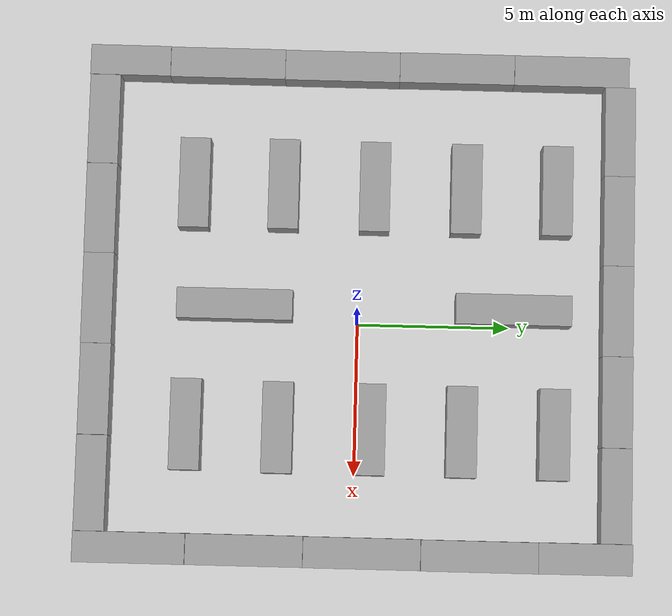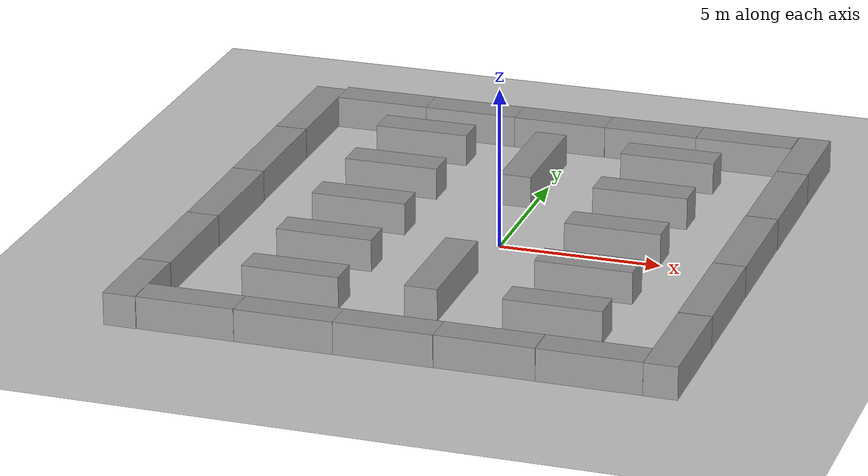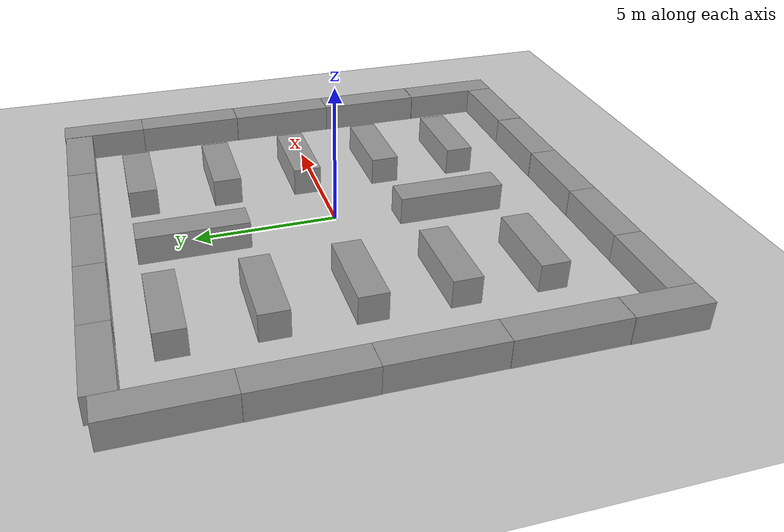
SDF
<sdf version="1.7">
 <world name="default">
  <model name="ground_plane">
   <static>1</static>
   <link name="link">
    <collision name="collision">
     <geometry><plane><normal>0 0 1</normal><size>100 100</size></plane></geometry>
     <surface><friction><ode><mu>100</mu><mu2>50</mu2></ode></friction></surface>
    </collision>
    <visual name="visual">
     <cast_shadows>0</cast_shadows>
     <geometry><plane><normal>0 0 1</normal><size>100 100</size></plane></geometry>
     <material>
      <script><uri>file://media/materials/scripts/gazebo.material</uri><name>Gazebo/Grey</name></script>
     </material>
    </visual>
   </link>
  </model>
  <light name="sun" type="directional">
   <pose>0 0 10 0 -0 0</pose>
   <diffuse>0.8 0.8 0.8 1</diffuse>
   <specular>0.2 0.2 0.2 1</specular>
   <attenuation>
    <range>1000</range>
    <constant>0.9</constant>
    <linear>0.01</linear>
    <quadratic>0.001</quadratic>
   </attenuation>
   <direction>-0.5 0.1 -0.9</direction>
   <spot><inner_angle>0</inner_angle><outer_angle>0</outer_angle><falloff>0</falloff></spot>
  </light>
  <scene><shadows>0</shadows><ambient>0.4 0.4 0.4 1</ambient><background>0.7 0.7 0.7 1</background></scene>
  <physics type="ode">
   <real_time_update_rate>1000</real_time_update_rate>
   <max_step_size>0.001</max_step_size>
   <real_time_factor>1</real_time_factor>
   <ode>
    <solver>
     <type>quick</type>
     <iters>150</iters>
     <precon_iters>0</precon_iters>
     <sor>1.4</sor>
     <use_dynamic_moi_rescaling>1</use_dynamic_moi_rescaling>
    </solver>
    <constraints>
     <cfm>1e-05</cfm>
     <erp>0.2</erp>
     <contact_max_correcting_vel>2000</contact_max_correcting_vel>
     <contact_surface_layer>0.01</contact_surface_layer>
    </constraints>
   </ode>
  </physics>
  <model name="my_world">
   <static>1</static>
   <frame name="my_world::__model__" attached_to="my_world::">
    <pose relative_to="__model__">0 0 0 0 -0 0</pose>
   </frame>
  </model>
  <gravity>0 0 -9.8</gravity>
  <magnetic_field>6e-06 2.3e-05 -4.2e-05</magnetic_field>
  <atmosphere type="adiabatic"/>
  <spherical_coordinates>
   <surface_model>EARTH_WGS84</surface_model>
   <latitude_deg>0</latitude_deg>
   <longitude_deg>0</longitude_deg>
   <elevation>0</elevation>
   <heading_deg>0</heading_deg>
  </spherical_coordinates>
  <model name="unit_box_1">
   <pose>-6.51048 8.5192 0.499832 0 -0.000113 3e-05</pose>
   <link name="link">
    <inertial>
     <mass>1</mass>
     <inertia>
      <ixx>0.166667</ixx>
      <ixy>0</ixy>
      <ixz>0</ixz>
      <iyy>0.166667</iyy>
      <iyz>0</iyz>
      <izz>0.166667</izz>
     </inertia>
    </inertial>
    <collision name="collision"><geometry><box><size>2.97427 1 1</size></box></geometry></collision>
    <visual name="visual">
     <geometry><box><size>2.97427 1 1</size></box></geometry>
     <material>
      <script><name>Gazebo/Grey</name><uri>file://media/materials/scripts/gazebo.material</uri></script>
     </material>
    </visual>
   </link>
  </model>
  <model name="unit_box_1_clone">
   <pose>-3.53605 8.51514 0.499832 0 -0.000113 4.9e-05</pose>
   <link name="link">
    <inertial>
     <mass>1</mass>
     <inertia>
      <ixx>0.166667</ixx>
      <ixy>0</ixy>
      <ixz>0</ixz>
      <iyy>0.166667</iyy>
      <iyz>0</iyz>
      <izz>0.166667</izz>
     </inertia>
    </inertial>
    <collision name="collision"><geometry><box><size>2.97427 1 1</size></box></geometry></collision>
    <visual name="visual">
     <geometry><box><size>2.97427 1 1</size></box></geometry>
     <material>
      <script><name>Gazebo/Grey</name><uri>file://media/materials/scripts/gazebo.material</uri></script>
     </material>
    </visual>
   </link>
  </model>
  <model name="unit_box_1_clone_0">
   <pose>-0.561181 8.51089 0.499832 0 0.000113 7.2e-05</pose>
   <link name="link">
    <inertial>
     <mass>1</mass>
     <inertia>
      <ixx>0.166667</ixx>
      <ixy>0</ixy>
      <ixz>0</ixz>
      <iyy>0.166667</iyy>
      <iyz>0</iyz>
      <izz>0.166667</izz>
     </inertia>
    </inertial>
    <collision name="collision"><geometry><box><size>2.97427 1 1</size></box></geometry></collision>
    <visual name="visual">
     <geometry><box><size>2.97427 1 1</size></box></geometry>
     <material>
      <script><name>Gazebo/Grey</name><uri>file://media/materials/scripts/gazebo.material</uri></script>
     </material>
    </visual>
   </link>
  </model>
  <model name="unit_box_1_clone_1">
   <pose>2.415 8.51847 0.499832 -0 -0.000113 0.00018</pose>
   <link name="link">
    <inertial>
     <mass>1</mass>
     <inertia>
      <ixx>0.166667</ixx>
      <ixy>0</ixy>
      <ixz>0</ixz>
      <iyy>0.166667</iyy>
      <iyz>0</iyz>
      <izz>0.166667</izz>
     </inertia>
    </inertial>
    <collision name="collision"><geometry><box><size>2.97427 1 1</size></box></geometry></collision>
    <visual name="visual">
     <geometry><box><size>2.97427 1 1</size></box></geometry>
     <material>
      <script><name>Gazebo/Grey</name><uri>file://media/materials/scripts/gazebo.material</uri></script>
     </material>
    </visual>
   </link>
  </model>
  <model name="unit_box_1_clone_2">
   <pose>5.44261 8.52219 0.499801 -0 -0.000129 0.000342</pose>
   <link name="link">
    <inertial>
     <mass>1</mass>
     <inertia>
      <ixx>0.166667</ixx>
      <ixy>0</ixy>
      <ixz>0</ixz>
      <iyy>0.166667</iyy>
      <iyz>0</iyz>
      <izz>0.166667</izz>
     </inertia>
    </inertial>
    <collision name="collision"><geometry><box><size>3.07192 1 1</size></box></geometry></collision>
    <visual name="visual">
     <geometry><box><size>3.07192 1 1</size></box></geometry>
     <material>
      <script><name>Gazebo/Grey</name><uri>file://media/materials/scripts/gazebo.material</uri></script>
     </material>
    </visual>
   </link>
  </model>
  <model name="unit_box_2">
   <pose>7.49688 7.54482 0.499816 -0.000121 0 0.001466</pose>
   <link name="link">
    <inertial>
     <mass>1</mass>
     <inertia>
      <ixx>0.166667</ixx>
      <ixy>0</ixy>
      <ixz>0</ixz>
      <iyy>0.166667</iyy>
      <iyz>0</iyz>
      <izz>0.166667</izz>
     </inertia>
    </inertial>
    <collision name="collision"><geometry><box><size>1 3.02582 1</size></box></geometry></collision>
    <visual name="visual">
     <geometry><box><size>1 3.02582 1</size></box></geometry>
     <material>
      <script><name>Gazebo/Grey</name><uri>file://media/materials/scripts/gazebo.material</uri></script>
     </material>
    </visual>
   </link>
  </model>
  <model name="unit_box_2_clone">
   <pose>7.50448 4.13269 0.499421 -0.000305 0 0.00039</pose>
   <link name="link">
    <inertial>
     <mass>1</mass>
     <inertia>
      <ixx>0.166667</ixx>
      <ixy>0</ixy>
      <ixz>0</ixz>
      <iyy>0.166667</iyy>
      <iyz>0</iyz>
      <izz>0.166667</izz>
     </inertia>
    </inertial>
    <collision name="collision"><geometry><box><size>1 3.79455 1</size></box></geometry></collision>
    <visual name="visual">
     <geometry><box><size>1 3.79455 1</size></box></geometry>
     <material>
      <script><name>Gazebo/Grey</name><uri>file://media/materials/scripts/gazebo.material</uri></script>
     </material>
    </visual>
   </link>
  </model>
  <model name="unit_box_2_clone_clone">
   <pose>7.4957 0.331151 0.499421 0.000305 -0 3.4e-05</pose>
   <link name="link">
    <inertial>
     <mass>1</mass>
     <inertia>
      <ixx>0.166667</ixx>
      <ixy>0</ixy>
      <ixz>0</ixz>
      <iyy>0.166667</iyy>
      <iyz>0</iyz>
      <izz>0.166667</izz>
     </inertia>
    </inertial>
    <collision name="collision"><geometry><box><size>1 3.79454 1</size></box></geometry></collision>
    <visual name="visual">
     <geometry><box><size>1 3.79454 1</size></box></geometry>
     <material>
      <script><name>Gazebo/Grey</name><uri>file://media/materials/scripts/gazebo.material</uri></script>
     </material>
    </visual>
   </link>
  </model>
  <model name="unit_box_2_clone_clone_clone">
   <pose>7.49012 -3.46976 0.499421 -0.000305 0 1e-06</pose>
   <link name="link">
    <inertial>
     <mass>1</mass>
     <inertia>
      <ixx>0.166667</ixx>
      <ixy>0</ixy>
      <ixz>0</ixz>
      <iyy>0.166667</iyy>
      <iyz>0</iyz>
      <izz>0.166667</izz>
     </inertia>
    </inertial>
    <collision name="collision"><geometry><box><size>1 3.79454 1</size></box></geometry></collision>
    <visual name="visual">
     <geometry><box><size>1 3.79454 1</size></box></geometry>
     <material>
      <script><name>Gazebo/Grey</name><uri>file://media/materials/scripts/gazebo.material</uri></script>
     </material>
    </visual>
   </link>
  </model>
  <model name="unit_box_2_clone_clone_clone_0">
   <pose>7.49278 -7.19435 0.499533 -0.000257 -0 0.000179</pose>
   <link name="link">
    <inertial>
     <mass>1</mass>
     <inertia>
      <ixx>0.166667</ixx>
      <ixy>0</ixy>
      <ixz>0</ixz>
      <iyy>0.166667</iyy>
      <iyz>0</iyz>
      <izz>0.166667</izz>
     </inertia>
    </inertial>
    <collision name="collision"><geometry><box><size>1 3.63212 1</size></box></geometry></collision>
    <visual name="visual">
     <geometry><box><size>1 3.63212 1</size></box></geometry>
     <material>
      <script><name>Gazebo/Grey</name><uri>file://media/materials/scripts/gazebo.material</uri></script>
     </material>
    </visual>
   </link>
  </model>
  <model name="unit_box_2_clone_clone_clone_clone">
   <pose>-8.49783 6.90371 0.499421 -0.000305 0 8e-06</pose>
   <link name="link">
    <inertial>
     <mass>1</mass>
     <inertia>
      <ixx>0.166667</ixx>
      <ixy>0</ixy>
      <ixz>0</ixz>
      <iyy>0.166667</iyy>
      <iyz>0</iyz>
      <izz>0.166667</izz>
     </inertia>
    </inertial>
    <collision name="collision"><geometry><box><size>1 3.79454 1</size></box></geometry></collision>
    <visual name="visual">
     <geometry><box><size>1 3.79454 1</size></box></geometry>
     <material>
      <script><name>Gazebo/Grey</name><uri>file://media/materials/scripts/gazebo.material</uri></script>
     </material>
    </visual>
   </link>
  </model>
  <model name="unit_box_2_clone_clone_clone_clone_0">
   <pose>-8.50204 3.10604 0.499421 -0.000305 -0 6e-06</pose>
   <link name="link">
    <inertial>
     <mass>1</mass>
     <inertia>
      <ixx>0.166667</ixx>
      <ixy>0</ixy>
      <ixz>0</ixz>
      <iyy>0.166667</iyy>
      <iyz>0</iyz>
      <izz>0.166667</izz>
     </inertia>
    </inertial>
    <collision name="collision"><geometry><box><size>1 3.79454 1</size></box></geometry></collision>
    <visual name="visual">
     <geometry><box><size>1 3.79454 1</size></box></geometry>
     <material>
      <script><name>Gazebo/Grey</name><uri>file://media/materials/scripts/gazebo.material</uri></script>
     </material>
    </visual>
   </link>
  </model>
  <model name="unit_box_2_clone_clone_clone_clone_1">
   <pose>-8.49424 -0.689681 0.499421 0.000305 -0 6e-06</pose>
   <link name="link">
    <inertial>
     <mass>1</mass>
     <inertia>
      <ixx>0.166667</ixx>
      <ixy>0</ixy>
      <ixz>0</ixz>
      <iyy>0.166667</iyy>
      <iyz>0</iyz>
      <izz>0.166667</izz>
     </inertia>
    </inertial>
    <collision name="collision"><geometry><box><size>1 3.79454 1</size></box></geometry></collision>
    <visual name="visual">
     <geometry><box><size>1 3.79454 1</size></box></geometry>
     <material>
      <script><name>Gazebo/Grey</name><uri>file://media/materials/scripts/gazebo.material</uri></script>
     </material>
    </visual>
   </link>
  </model>
  <model name="unit_box_2_clone_clone_clone_clone_2">
   <pose>-8.50514 -4.48624 0.499421 -0.000305 -0 -4.7e-05</pose>
   <link name="link">
    <inertial>
     <mass>1</mass>
     <inertia>
      <ixx>0.166667</ixx>
      <ixy>0</ixy>
      <ixz>0</ixz>
      <iyy>0.166667</iyy>
      <iyz>0</iyz>
      <izz>0.166667</izz>
     </inertia>
    </inertial>
    <collision name="collision"><geometry><box><size>1 3.79454 1</size></box></geometry></collision>
    <visual name="visual">
     <geometry><box><size>1 3.79454 1</size></box></geometry>
     <material>
      <script><name>Gazebo/Grey</name><uri>file://media/materials/scripts/gazebo.material</uri></script>
     </material>
    </visual>
   </link>
  </model>
  <model name="unit_box_2_clone_clone_clone_0_clone">
   <pose>-8.5233 -7.71202 0.499912 6.7e-05 0 -0.002549</pose>
   <link name="link">
    <inertial>
     <mass>1</mass>
     <inertia>
      <ixx>0.166667</ixx>
      <ixy>0</ixy>
      <ixz>0</ixz>
      <iyy>0.166667</iyy>
      <iyz>0</iyz>
      <izz>0.166667</izz>
     </inertia>
    </inertial>
    <collision name="collision"><geometry><box><size>1 2.64911 1</size></box></geometry></collision>
    <visual name="visual">
     <geometry><box><size>1 2.64911 1</size></box></geometry>
     <material>
      <script><name>Gazebo/Grey</name><uri>file://media/materials/scripts/gazebo.material</uri></script>
     </material>
    </visual>
   </link>
  </model>
  <model name="unit_box_1_clone_1_clone">
   <pose>-6.53386 -8.52342 0.499832 0 0.000113 0.000458</pose>
   <link name="link">
    <inertial>
     <mass>1</mass>
     <inertia>
      <ixx>0.166667</ixx>
      <ixy>0</ixy>
      <ixz>0</ixz>
      <iyy>0.166667</iyy>
      <iyz>0</iyz>
      <izz>0.166667</izz>
     </inertia>
    </inertial>
    <collision name="collision"><geometry><box><size>2.97427 1 1</size></box></geometry></collision>
    <visual name="visual">
     <geometry><box><size>2.97427 1 1</size></box></geometry>
     <material>
      <script><name>Gazebo/Grey</name><uri>file://media/materials/scripts/gazebo.material</uri></script>
     </material>
    </visual>
   </link>
  </model>
  <model name="unit_box_1_clone_1_clone_clone">
   <pose>-3.55701 -8.52185 0.5 0 -0 0.001732</pose>
   <link name="link">
    <inertial>
     <mass>1</mass>
     <inertia>
      <ixx>0.166667</ixx>
      <ixy>0</ixy>
      <ixz>0</ixz>
      <iyy>0.166667</iyy>
      <iyz>0</iyz>
      <izz>0.166667</izz>
     </inertia>
    </inertial>
    <collision name="collision"><geometry><box><size>2.97427 1 1</size></box></geometry></collision>
    <visual name="visual">
     <geometry><box><size>2.97427 1 1</size></box></geometry>
     <material>
      <script><name>Gazebo/Grey</name><uri>file://media/materials/scripts/gazebo.material</uri></script>
     </material>
    </visual>
   </link>
  </model>
  <model name="unit_box_1_clone_1_clone_clone_0">
   <pose>-0.582736 -8.51071 0.5 0 -0 0.001745</pose>
   <link name="link">
    <inertial>
     <mass>1</mass>
     <inertia>
      <ixx>0.166667</ixx>
      <ixy>0</ixy>
      <ixz>0</ixz>
      <iyy>0.166667</iyy>
      <iyz>0</iyz>
      <izz>0.166667</izz>
     </inertia>
    </inertial>
    <collision name="collision"><geometry><box><size>2.97427 1 1</size></box></geometry></collision>
    <visual name="visual">
     <geometry><box><size>2.97427 1 1</size></box></geometry>
     <material>
      <script><name>Gazebo/Grey</name><uri>file://media/materials/scripts/gazebo.material</uri></script>
     </material>
    </visual>
   </link>
  </model>
  <model name="unit_box_1_clone_1_clone_clone_1">
   <pose>2.39447 -8.49705 0.499832 -0 0.000113 0.000538</pose>
   <link name="link">
    <inertial>
     <mass>1</mass>
     <inertia>
      <ixx>0.166667</ixx>
      <ixy>0</ixy>
      <ixz>0</ixz>
      <iyy>0.166667</iyy>
      <iyz>0</iyz>
      <izz>0.166667</izz>
     </inertia>
    </inertial>
    <collision name="collision"><geometry><box><size>2.97427 1 1</size></box></geometry></collision>
    <visual name="visual">
     <geometry><box><size>2.97427 1 1</size></box></geometry>
     <material>
      <script><name>Gazebo/Grey</name><uri>file://media/materials/scripts/gazebo.material</uri></script>
     </material>
    </visual>
   </link>
  </model>
  <model name="unit_box_1_clone_1_clone_clone_2">
   <pose>5.44026 -8.50008 0.499793 -0 0.000134 0.000574</pose>
   <link name="link">
    <inertial>
     <mass>1</mass>
     <inertia>
      <ixx>0.166667</ixx>
      <ixy>0</ixy>
      <ixz>0</ixz>
      <iyy>0.166667</iyy>
      <iyz>0</iyz>
      <izz>0.166667</izz>
     </inertia>
    </inertial>
    <collision name="collision"><geometry><box><size>3.09615 1 1</size></box></geometry></collision>
    <visual name="visual">
     <geometry><box><size>3.09615 1 1</size></box></geometry>
     <material>
      <script><name>Gazebo/Grey</name><uri>file://media/materials/scripts/gazebo.material</uri></script>
     </material>
    </visual>
   </link>
  </model>
  <model name="unit_box_1_clone_1_clone_clone_1_clone">
   <pose>3.46492 -5.50617 0.499832 0 -0.000113 0.000538</pose>
   <link name="link">
    <inertial>
     <mass>1</mass>
     <inertia>
      <ixx>0.166667</ixx>
      <ixy>0</ixy>
      <ixz>0</ixz>
      <iyy>0.166667</iyy>
      <iyz>0</iyz>
      <izz>0.166667</izz>
     </inertia>
    </inertial>
    <collision name="collision"><geometry><box><size>2.97427 1 1</size></box></geometry></collision>
    <visual name="visual">
     <geometry><box><size>2.97427 1 1</size></box></geometry>
     <material>
      <script><name>Gazebo/Grey</name><uri>file://media/materials/scripts/gazebo.material</uri></script>
     </material>
    </visual>
   </link>
  </model>
  <model name="unit_box_1_clone_1_clone_clone_1_clone_0">
   <pose>3.50033 -2.51354 0.499832 0 -0.000113 0.000557</pose>
   <link name="link">
    <inertial>
     <mass>1</mass>
     <inertia>
      <ixx>0.166667</ixx>
      <ixy>0</ixy>
      <ixz>0</ixz>
      <iyy>0.166667</iyy>
      <iyz>0</iyz>
      <izz>0.166667</izz>
     </inertia>
    </inertial>
    <collision name="collision"><geometry><box><size>2.97427 1 1</size></box></geometry></collision>
    <visual name="visual">
     <geometry><box><size>2.97427 1 1</size></box></geometry>
     <material>
      <script><name>Gazebo/Grey</name><uri>file://media/materials/scripts/gazebo.material</uri></script>
     </material>
    </visual>
   </link>
  </model>
  <model name="unit_box_1_clone_1_clone_clone_1_clone_1">
   <pose>3.49798 0.503435 0.499832 0 0.000113 0.000554</pose>
   <link name="link">
    <inertial>
     <mass>1</mass>
     <inertia>
      <ixx>0.166667</ixx>
      <ixy>0</ixy>
      <ixz>0</ixz>
      <iyy>0.166667</iyy>
      <iyz>0</iyz>
      <izz>0.166667</izz>
     </inertia>
    </inertial>
    <collision name="collision"><geometry><box><size>2.97427 1 1</size></box></geometry></collision>
    <visual name="visual">
     <geometry><box><size>2.97427 1 1</size></box></geometry>
     <material>
      <script><name>Gazebo/Grey</name><uri>file://media/materials/scripts/gazebo.material</uri></script>
     </material>
    </visual>
   </link>
  </model>
  <model name="unit_box_1_clone_1_clone_clone_1_clone_2">
   <pose>3.50261 3.48229 0.499832 0 -0.000113 0.000538</pose>
   <link name="link">
    <inertial>
     <mass>1</mass>
     <inertia>
      <ixx>0.166667</ixx>
      <ixy>0</ixy>
      <ixz>0</ixz>
      <iyy>0.166667</iyy>
      <iyz>0</iyz>
      <izz>0.166667</izz>
     </inertia>
    </inertial>
    <collision name="collision"><geometry><box><size>2.97427 1 1</size></box></geometry></collision>
    <visual name="visual">
     <geometry><box><size>2.97427 1 1</size></box></geometry>
     <material>
      <script><name>Gazebo/Grey</name><uri>file://media/materials/scripts/gazebo.material</uri></script>
     </material>
    </visual>
   </link>
  </model>
  <model name="unit_box_1_clone_1_clone_clone_1_clone_3">
   <pose>3.51834 6.49615 0.499832 0 -0.000113 0.000538</pose>
   <link name="link">
    <inertial>
     <mass>1</mass>
     <inertia>
      <ixx>0.166667</ixx>
      <ixy>0</ixy>
      <ixz>0</ixz>
      <iyy>0.166667</iyy>
      <iyz>0</iyz>
      <izz>0.166667</izz>
     </inertia>
    </inertial>
    <collision name="collision"><geometry><box><size>2.97427 1 1</size></box></geometry></collision>
    <visual name="visual">
     <geometry><box><size>2.97427 1 1</size></box></geometry>
     <material>
      <script><name>Gazebo/Grey</name><uri>file://media/materials/scripts/gazebo.material</uri></script>
     </material>
    </visual>
   </link>
  </model>
  <model name="unit_box_1_clone_1_clone_clone_1_clone_4">
   <pose>-4.49068 6.48493 0.499832 0 -0.000113 0.000538</pose>
   <link name="link">
    <inertial>
     <mass>1</mass>
     <inertia>
      <ixx>0.166667</ixx>
      <ixy>0</ixy>
      <ixz>0</ixz>
      <iyy>0.166667</iyy>
      <iyz>0</iyz>
      <izz>0.166667</izz>
     </inertia>
    </inertial>
    <collision name="collision"><geometry><box><size>2.97427 1 1</size></box></geometry></collision>
    <visual name="visual">
     <geometry><box><size>2.97427 1 1</size></box></geometry>
     <material>
      <script><name>Gazebo/Grey</name><uri>file://media/materials/scripts/gazebo.material</uri></script>
     </material>
    </visual>
   </link>
  </model>
  <model name="unit_box_1_clone_1_clone_clone_1_clone_5">
   <pose>-4.48151 0.475594 0.499832 0 0.000113 0.000559</pose>
   <link name="link">
    <inertial>
     <mass>1</mass>
     <inertia>
      <ixx>0.166667</ixx>
      <ixy>0</ixy>
      <ixz>0</ixz>
      <iyy>0.166667</iyy>
      <iyz>0</iyz>
      <izz>0.166667</izz>
     </inertia>
    </inertial>
    <collision name="collision"><geometry><box><size>2.97427 1 1</size></box></geometry></collision>
    <visual name="visual">
     <geometry><box><size>2.97427 1 1</size></box></geometry>
     <material>
      <script><name>Gazebo/Grey</name><uri>file://media/materials/scripts/gazebo.material</uri></script>
     </material>
    </visual>
   </link>
  </model>
  <model name="unit_box_1_clone_1_clone_clone_1_clone_6">
   <pose>-4.50289 -2.52514 0.499832 0 -0.000113 0.000566</pose>
   <link name="link">
    <inertial>
     <mass>1</mass>
     <inertia>
      <ixx>0.166667</ixx>
      <ixy>0</ixy>
      <ixz>0</ixz>
      <iyy>0.166667</iyy>
      <iyz>0</iyz>
      <izz>0.166667</izz>
     </inertia>
    </inertial>
    <collision name="collision"><geometry><box><size>2.97427 1 1</size></box></geometry></collision>
    <visual name="visual">
     <geometry><box><size>2.97427 1 1</size></box></geometry>
     <material>
      <script><name>Gazebo/Grey</name><uri>file://media/materials/scripts/gazebo.material</uri></script>
     </material>
    </visual>
   </link>
  </model>
  <model name="unit_box_1_clone_1_clone_clone_1_clone_7">
   <pose>-4.48186 -5.46755 0.499832 -0 0.000113 0.000539</pose>
   <link name="link">
    <inertial>
     <mass>1</mass>
     <inertia>
      <ixx>0.166667</ixx>
      <ixy>0</ixy>
      <ixz>0</ixz>
      <iyy>0.166667</iyy>
      <iyz>0</iyz>
      <izz>0.166667</izz>
     </inertia>
    </inertial>
    <collision name="collision"><geometry><box><size>2.97427 1 1</size></box></geometry></collision>
    <visual name="visual">
     <geometry><box><size>2.97427 1 1</size></box></geometry>
     <material>
      <script><name>Gazebo/Grey</name><uri>file://media/materials/scripts/gazebo.material</uri></script>
     </material>
    </visual>
   </link>
  </model>
  <model name="unit_box_1_clone_1_clone_clone_1_clone_8">
   <pose>-4.48093 3.49231 0.499832 -0 0.000113 0.000548</pose>
   <link name="link">
    <inertial>
     <mass>1</mass>
     <inertia>
      <ixx>0.166667</ixx>
      <ixy>0</ixy>
      <ixz>0</ixz>
      <iyy>0.166667</iyy>
      <iyz>0</iyz>
      <izz>0.166667</izz>
     </inertia>
    </inertial>
    <collision name="collision"><geometry><box><size>2.97427 1 1</size></box></geometry></collision>
    <visual name="visual">
     <geometry><box><size>2.97427 1 1</size></box></geometry>
     <material>
      <script><name>Gazebo/Grey</name><uri>file://media/materials/scripts/gazebo.material</uri></script>
     </material>
    </visual>
   </link>
  </model>
  <model name="unit_box_2_clone_clone_clone_clone_1_clone">
   <pose>-0.497628 -4.02277 0.499421 -0.000305 -0 6e-06</pose>
   <link name="link">
    <inertial>
     <mass>1</mass>
     <inertia>
      <ixx>0.166667</ixx>
      <ixy>0</ixy>
      <ixz>0</ixz>
      <iyy>0.166667</iyy>
      <iyz>0</iyz>
      <izz>0.166667</izz>
     </inertia>
    </inertial>
    <collision name="collision"><geometry><box><size>1 3.79454 1</size></box></geometry></collision>
    <visual name="visual">
     <geometry><box><size>1 3.79454 1</size></box></geometry>
     <material>
      <script><name>Gazebo/Grey</name><uri>file://media/materials/scripts/gazebo.material</uri></script>
     </material>
    </visual>
   </link>
  </model>
  <model name="unit_box_2_clone_clone_clone_clone_1_clone_0">
   <pose>-0.52436 5.11152 0.499421 -0.000305 -0 6e-06</pose>
   <link name="link">
    <inertial>
     <mass>1</mass>
     <inertia>
      <ixx>0.166667</ixx>
      <ixy>0</ixy>
      <ixz>0</ixz>
      <iyy>0.166667</iyy>
      <iyz>0</iyz>
      <izz>0.166667</izz>
     </inertia>
    </inertial>
    <collision name="collision"><geometry><box><size>1 3.79454 1</size></box></geometry></collision>
    <visual name="visual">
     <geometry><box><size>1 3.79454 1</size></box></geometry>
     <material>
      <script><name>Gazebo/Grey</name><uri>file://media/materials/scripts/gazebo.material</uri></script>
     </material>
    </visual>
   </link>
  </model>
 </world>
</sdf>
